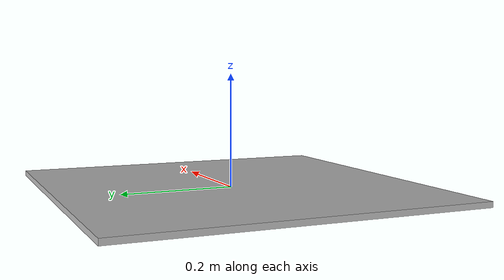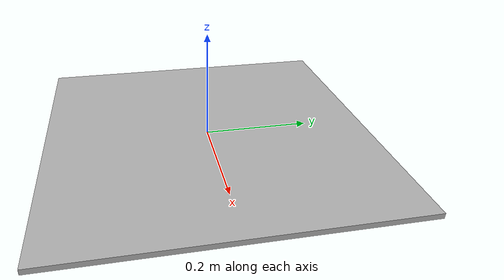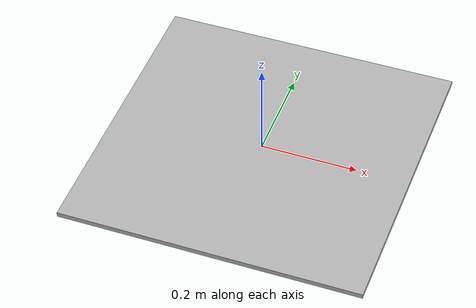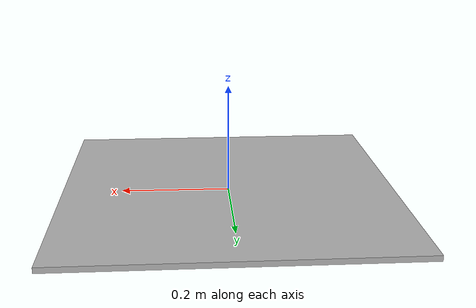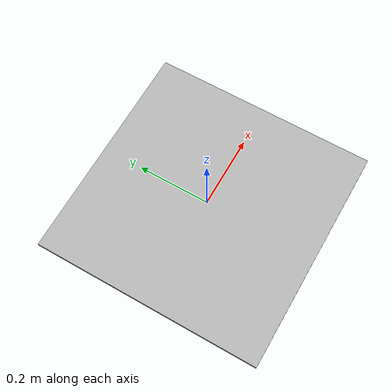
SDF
<?xml version='1.0'?>
<sdf version='1.4'>
  <model name="apriltag0">
    <link name='link'>
      <pose>0 0 0 0 0 0</pose>
      <inertial>
        <mass>0.390</mass>
        <inertia>
          <ixx>0.00058</ixx>
          <ixy>0</ixy>
          <ixz>0</ixz>
          <iyy>0.00058</iyy>
          <iyz>0</iyz>
          <izz>0.00019</izz>
        </inertia>
      </inertial>
      <collision name='collision'>
        <geometry>
                <box>
                  <size>.62112 .62112 .01</size>
                </box>
        </geometry>
      </collision>

      <visual name='visual'>
        <geometry>
                <box>
                  <size>.62112 .62112 .01</size>
                </box>
        </geometry>

        <material>
          <script>
            <uri>model://apriltag0/materials/scripts</uri>
            <uri>model://apriltag0/materials/textures</uri>
            <name>apriltag0/Diffuse</name>
          </script>
        </material>
      </visual>
    </link>
  </model>
</sdf>
